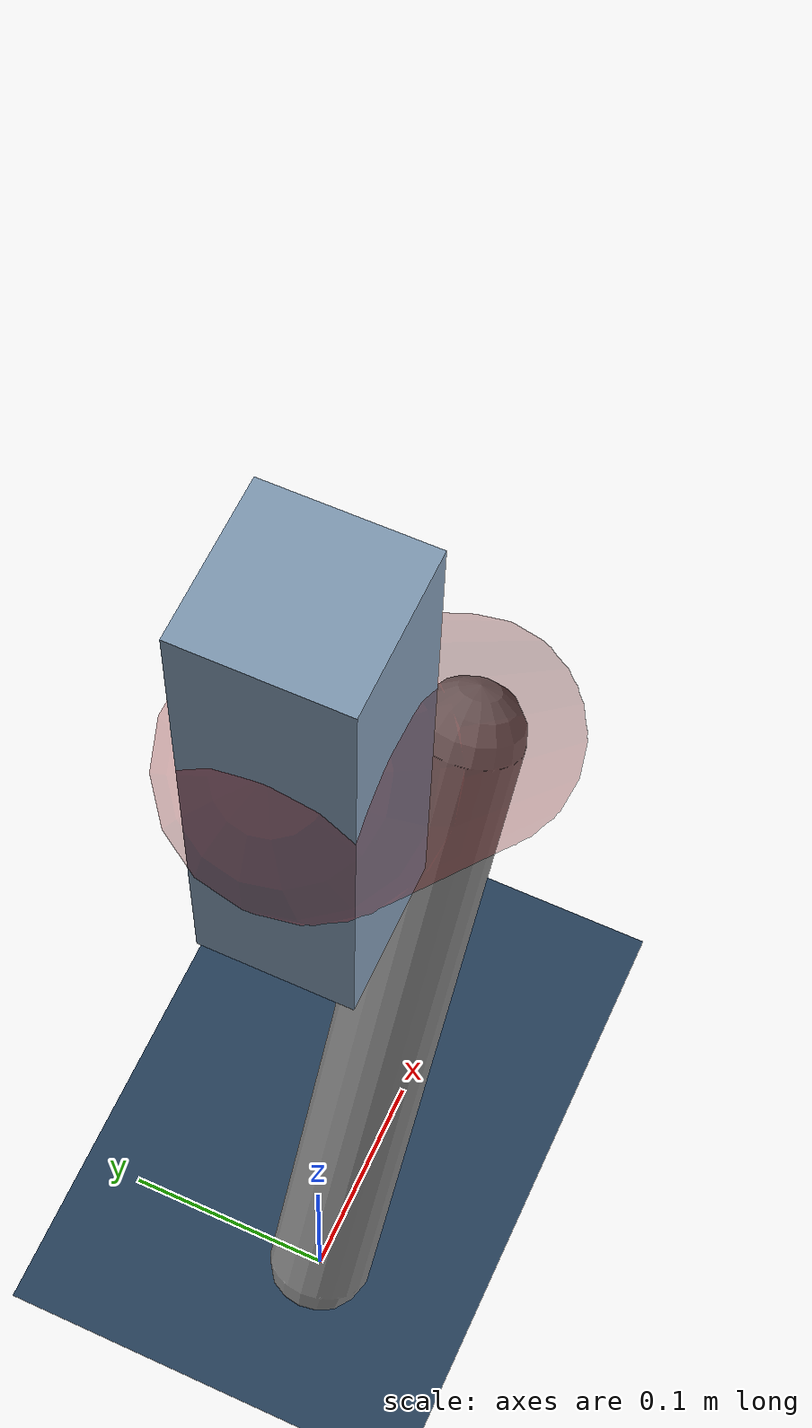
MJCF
<mujoco model="Hopper2D">
	<compiler inertiafromgeom="true" angle="radian" />
	<option timestep="0.001" integrator="implicit" cone="elliptic" solver="Newton" tolerance="1e-10" />

	<default>
		<geom contype="1" conaffinity="1" condim="3" friction="2 0.005 0.0001" solref="0.005 1" />
		<joint limited="true" damping="0.1" />
	</default>

	<asset>
		<texture name="skybox" type="skybox" builtin="gradient" rgb1=".4 .6 .8" rgb2="0 0 0" width="800" height="800" />
		<texture name="grid" type="2d" builtin="checker" rgb1=".1 .2 .3" rgb2=".2 .3 .4" width="300" height="300" mark="edge" markrgb=".2 .3 .4" />
		<material name="ground" texture="grid" texrepeat="1 1" texuniform="true" reflectance="0.1" />
		<material name="leg" rgba="0.5 0.6 0.7 1" />
	</asset>

	<worldbody>

		<geom name="floor" type="plane" size="5 5 0.25" material="ground" />

		<light directional="false" diffuse="0.8 0.8 0.8" specular="0.3 0.3 0.3" pos="0 0 2" dir="0 0 -1" />
		<light mode="targetbodycom" target="base" directional="false" diffuse="0.8 0.8 0.8" specular="0.3 0.3 0.3" pos="0 0 2" dir="0 0 -1" />

		<camera name="fixed" pos="0 -2 1" xyaxes="1 0 0 0 0 1" />
		<camera name="tracking" mode="trackcom" pos="0 -3 1" />

		<body name="root" pos="0 0 0.5084152175682617">
			<joint name="slide_x" type="slide" axis="1 0 0" range="-100 100" />
			<joint name="slide_z" type="slide" axis="0 0 1" range="0 10" />

			<body name="base" pos="0 0 0">
				<geom name="torso" type="box" size="0.03 0.03 0.1" mass="2.023" material="leg" />

				<body name="link1" pos="0 0 0" euler="0 0.9719523855275909 0">
					<joint type="hinge" axis="0 -1 0" pos="0 0 0" name="hinge1" limited="true" range="-3.14 3.14" stiffness="0" damping="0.1" />
					<geom name="thigh" type="capsule" fromto="0 0 0 0.26653004089390553 0 0" size="0.05" rgba="0.5 0 0 0.3" mass="0.8995311104135449" />

					<body name="link2" pos="0.26653004089390553 0 0" euler="0 1.0792970957537664 0">
						<joint type="hinge" axis="0 -1 0" pos="0 0 0" name="hinge2" limited="true" range="-3.14 3.14" stiffness="0" damping="0.1" />
						<geom name="shank" type="capsule" fromto="0 0 0 0.325066913148022 0 0" size="0.025" mass="0.5037535305184176" />

					</body>
				</body>
			</body>
		</body>
	</worldbody>

	<actuator>
		<motor name="torque1" joint="hinge1" ctrlrange="-81.9552169896823 81.9552169896823" ctrllimited="true" gear="1" />
		<motor name="torque2" joint="hinge2" ctrlrange="-48.74397547619943 48.74397547619943" ctrllimited="true" gear="1" />
	</actuator>
</mujoco>
